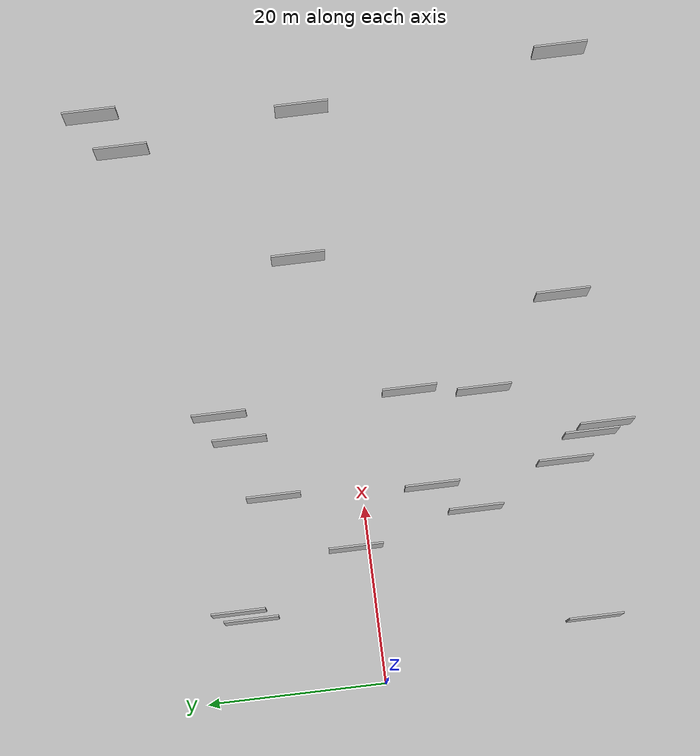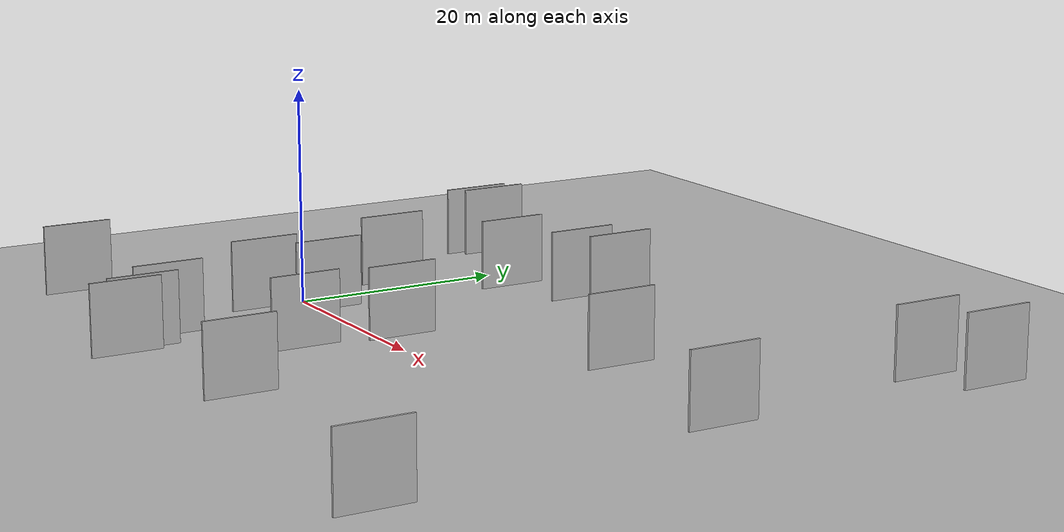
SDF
<?xml version="1.0" encoding="utf-8"?>

<sdf version="1.6">

   <world name="default">

      <gui fullscreen="0">

         <camera name="user_camera">

            <pose>-15 0 4.57585 0 0 0</pose>

            <view_controller>orbit</view_controller>

         </camera>

      </gui>

      <scene>

         <sky>

           <clouds>

             <speed>12</speed>

           </clouds>

         </sky>

         <ambient>0.4 0.4 0.4 1</ambient>

         <background>0.7 0.7 0.7 1</background>

         <shadows>1</shadows>

      </scene>

      <gravity>0 0 -9.8066</gravity>

      <magnetic_field>6e-06 2.3e-05 -4.2e-05</magnetic_field>

      <physics default="0" name="default_physics" type="ode">

         <ode>

            <solver>

               <type>quick</type>

               <iters>10</iters>

               <sor>1.0</sor>

               <use_dynamic_moi_rescaling>0</use_dynamic_moi_rescaling>

            </solver>

            <constraints>

               <cfm>0</cfm>

               <erp>0.2</erp>

               <contact_max_correcting_vel>100</contact_max_correcting_vel>

               <contact_surface_layer>0.001</contact_surface_layer>

            </constraints>

         </ode>

         <max_step_size>0.004</max_step_size>

         <real_time_factor>1</real_time_factor>

         <real_time_update_rate>250</real_time_update_rate>

      </physics>

      <light name="sun" type="directional">

         <cast_shadows>1</cast_shadows>

         <pose>0 0 10 0 0 0</pose>

         <diffuse>0.8 0.8 0.8 1</diffuse>

         <specular>0.2 0.2 0.2 1</specular>

         <attenuation>

            <range>1000</range>

            <constant>0.9</constant>

            <linear>0.01</linear>

            <quadratic>0.001</quadratic>

         </attenuation>

         <direction>-0.5 0.1 -0.9</direction>

      </light>

      <include>

         <name>ground_plane_1</name>

         <uri>model://HANNAS_ground_plane</uri>

         <pose>0 0 0  0 0 0</pose>

      </include>

      <include>

         <name>ground_plane_2</name>

         <uri>model://HANNAS_ground_plane</uri>

         <pose>100 0 0  0 0 0</pose>

      </include>

      <model name="HANNAS_wall_1">

         <static>1</static>

         <pose frame="">20.7412 -7.5342 5.0 0.000000 0.000000 1.570796</pose>

         <link name="link">

            <pose frame="">0 0 3.00 0 0 0</pose>

            <collision name="collision">

               <geometry>

                  <box>

                     <size>6.00 0.2 6.00</size>

                  </box>

               </geometry>

               <max_contacts>10</max_contacts>

               <surface>

                  <contact>

                     <ode/>

                  </contact>

                  <bounce/>

                  <friction>

                     <torsional>

                        <ode/>

                     </torsional>

                     <ode/>

                  </friction>

               </surface>

            </collision>

            <visual name="visual">

               <cast_shadows>0</cast_shadows>

               <geometry>

                  <box>

                     <size>6.00 0.2 6.00</size>

                  </box>

               </geometry>

               <material>

                  <script>

                     <uri>model://HANNAS_wall/materials/scripts</uri>

                     <uri>model://HANNAS_wall/materials/textures</uri>

                     <name>vrc/HANNAS_wall</name>

                  </script>

               </material>

            </visual>

            <self_collide>0</self_collide>

            <enable_wind>0</enable_wind>

            <kinematic>0</kinematic>

         </link>

      </model>

      <model name="HANNAS_wall_2">

         <static>1</static>

         <pose frame="">67.8018 -27.8107 5.0 0.000000 0.000000 1.570796</pose>

         <link name="link">

            <pose frame="">0 0 3.00 0 0 0</pose>

            <collision name="collision">

               <geometry>

                  <box>

                     <size>6.00 0.2 6.00</size>

                  </box>

               </geometry>

               <max_contacts>10</max_contacts>

               <surface>

                  <contact>

                     <ode/>

                  </contact>

                  <bounce/>

                  <friction>

                     <torsional>

                        <ode/>

                     </torsional>

                     <ode/>

                  </friction>

               </surface>

            </collision>

            <visual name="visual">

               <cast_shadows>0</cast_shadows>

               <geometry>

                  <box>

                     <size>6.00 0.2 6.00</size>

                  </box>

               </geometry>

               <material>

                  <script>

                     <uri>model://HANNAS_wall/materials/scripts</uri>

                     <uri>model://HANNAS_wall/materials/textures</uri>

                     <name>vrc/HANNAS_wall</name>

                  </script>

               </material>

            </visual>

            <self_collide>0</self_collide>

            <enable_wind>0</enable_wind>

            <kinematic>0</kinematic>

         </link>

      </model>

      <model name="HANNAS_wall_3">

         <static>1</static>

         <pose frame="">31.2338 14.8441 5.0 0.000000 0.000000 1.570796</pose>

         <link name="link">

            <pose frame="">0 0 3.00 0 0 0</pose>

            <collision name="collision">

               <geometry>

                  <box>

                     <size>6.00 0.2 6.00</size>

                  </box>

               </geometry>

               <max_contacts>10</max_contacts>

               <surface>

                  <contact>

                     <ode/>

                  </contact>

                  <bounce/>

                  <friction>

                     <torsional>

                        <ode/>

                     </torsional>

                     <ode/>

                  </friction>

               </surface>

            </collision>

            <visual name="visual">

               <cast_shadows>0</cast_shadows>

               <geometry>

                  <box>

                     <size>6.00 0.2 6.00</size>

                  </box>

               </geometry>

               <material>

                  <script>

                     <uri>model://HANNAS_wall/materials/scripts</uri>

                     <uri>model://HANNAS_wall/materials/textures</uri>

                     <name>vrc/HANNAS_wall</name>

                  </script>

               </material>

            </visual>

            <self_collide>0</self_collide>

            <enable_wind>0</enable_wind>

            <kinematic>0</kinematic>

         </link>

      </model>

      <model name="HANNAS_wall_4">

         <static>1</static>

         <pose frame="">25.2690 -27.4634 5.0 0.000000 0.000000 1.570796</pose>

         <link name="link">

            <pose frame="">0 0 3.00 0 0 0</pose>

            <collision name="collision">

               <geometry>

                  <box>

                     <size>6.00 0.2 6.00</size>

                  </box>

               </geometry>

               <max_contacts>10</max_contacts>

               <surface>

                  <contact>

                     <ode/>

                  </contact>

                  <bounce/>

                  <friction>

                     <torsional>

                        <ode/>

                     </torsional>

                     <ode/>

                  </friction>

               </surface>

            </collision>

            <visual name="visual">

               <cast_shadows>0</cast_shadows>

               <geometry>

                  <box>

                     <size>6.00 0.2 6.00</size>

                  </box>

               </geometry>

               <material>

                  <script>

                     <uri>model://HANNAS_wall/materials/scripts</uri>

                     <uri>model://HANNAS_wall/materials/textures</uri>

                     <name>vrc/HANNAS_wall</name>

                  </script>

               </material>

            </visual>

            <self_collide>0</self_collide>

            <enable_wind>0</enable_wind>

            <kinematic>0</kinematic>

         </link>

      </model>

      <model name="HANNAS_wall_5">

         <static>1</static>

         <pose frame="">62.1963 22.2573 5.0 0.000000 0.000000 1.570796</pose>

         <link name="link">

            <pose frame="">0 0 3.00 0 0 0</pose>

            <collision name="collision">

               <geometry>

                  <box>

                     <size>6.00 0.2 6.00</size>

                  </box>

               </geometry>

               <max_contacts>10</max_contacts>

               <surface>

                  <contact>

                     <ode/>

                  </contact>

                  <bounce/>

                  <friction>

                     <torsional>

                        <ode/>

                     </torsional>

                     <ode/>

                  </friction>

               </surface>

            </collision>

            <visual name="visual">

               <cast_shadows>0</cast_shadows>

               <geometry>

                  <box>

                     <size>6.00 0.2 6.00</size>

                  </box>

               </geometry>

               <material>

                  <script>

                     <uri>model://HANNAS_wall/materials/scripts</uri>

                     <uri>model://HANNAS_wall/materials/textures</uri>

                     <name>vrc/HANNAS_wall</name>

                  </script>

               </material>

            </visual>

            <self_collide>0</self_collide>

            <enable_wind>0</enable_wind>

            <kinematic>0</kinematic>

         </link>

      </model>

      <model name="HANNAS_wall_6">

         <static>1</static>

         <pose frame="">8.4049 13.8768 5.0 0.000000 0.000000 1.570796</pose>

         <link name="link">

            <pose frame="">0 0 3.00 0 0 0</pose>

            <collision name="collision">

               <geometry>

                  <box>

                     <size>6.00 0.2 6.00</size>

                  </box>

               </geometry>

               <max_contacts>10</max_contacts>

               <surface>

                  <contact>

                     <ode/>

                  </contact>

                  <bounce/>

                  <friction>

                     <torsional>

                        <ode/>

                     </torsional>

                     <ode/>

                  </friction>

               </surface>

            </collision>

            <visual name="visual">

               <cast_shadows>0</cast_shadows>

               <geometry>

                  <box>

                     <size>6.00 0.2 6.00</size>

                  </box>

               </geometry>

               <material>

                  <script>

                     <uri>model://HANNAS_wall/materials/scripts</uri>

                     <uri>model://HANNAS_wall/materials/textures</uri>

                     <name>vrc/HANNAS_wall</name>

                  </script>

               </material>

            </visual>

            <self_collide>0</self_collide>

            <enable_wind>0</enable_wind>

            <kinematic>0</kinematic>

         </link>

      </model>

      <model name="HANNAS_wall_7">

         <static>1</static>

         <pose frame="">4.2225 -23.4742 5.0 0.000000 0.000000 1.570796</pose>

         <link name="link">

            <pose frame="">0 0 3.00 0 0 0</pose>

            <collision name="collision">

               <geometry>

                  <box>

                     <size>6.00 0.2 6.00</size>

                  </box>

               </geometry>

               <max_contacts>10</max_contacts>

               <surface>

                  <contact>

                     <ode/>

                  </contact>

                  <bounce/>

                  <friction>

                     <torsional>

                        <ode/>

                     </torsional>

                     <ode/>

                  </friction>

               </surface>

            </collision>

            <visual name="visual">

               <cast_shadows>0</cast_shadows>

               <geometry>

                  <box>

                     <size>6.00 0.2 6.00</size>

                  </box>

               </geometry>

               <material>

                  <script>

                     <uri>model://HANNAS_wall/materials/scripts</uri>

                     <uri>model://HANNAS_wall/materials/textures</uri>

                     <name>vrc/HANNAS_wall</name>

                  </script>

               </material>

            </visual>

            <self_collide>0</self_collide>

            <enable_wind>0</enable_wind>

            <kinematic>0</kinematic>

         </link>

      </model>

      <model name="HANNAS_wall_8">

         <static>1</static>

         <pose frame="">21.5722 9.9279 5.0 0.000000 0.000000 1.570796</pose>

         <link name="link">

            <pose frame="">0 0 3.00 0 0 0</pose>

            <collision name="collision">

               <geometry>

                  <box>

                     <size>6.00 0.2 6.00</size>

                  </box>

               </geometry>

               <max_contacts>10</max_contacts>

               <surface>

                  <contact>

                     <ode/>

                  </contact>

                  <bounce/>

                  <friction>

                     <torsional>

                        <ode/>

                     </torsional>

                     <ode/>

                  </friction>

               </surface>

            </collision>

            <visual name="visual">

               <cast_shadows>0</cast_shadows>

               <geometry>

                  <box>

                     <size>6.00 0.2 6.00</size>

                  </box>

               </geometry>

               <material>

                  <script>

                     <uri>model://HANNAS_wall/materials/scripts</uri>

                     <uri>model://HANNAS_wall/materials/textures</uri>

                     <name>vrc/HANNAS_wall</name>

                  </script>

               </material>

            </visual>

            <self_collide>0</self_collide>

            <enable_wind>0</enable_wind>

            <kinematic>0</kinematic>

         </link>

      </model>

      <model name="HANNAS_wall_9">

         <static>1</static>

         <pose frame="">24.4387 -25.6779 5.0 0.000000 0.000000 1.570796</pose>

         <link name="link">

            <pose frame="">0 0 3.00 0 0 0</pose>

            <collision name="collision">

               <geometry>

                  <box>

                     <size>6.00 0.2 6.00</size>

                  </box>

               </geometry>

               <max_contacts>10</max_contacts>

               <surface>

                  <contact>

                     <ode/>

                  </contact>

                  <bounce/>

                  <friction>

                     <torsional>

                        <ode/>

                     </torsional>

                     <ode/>

                  </friction>

               </surface>

            </collision>

            <visual name="visual">

               <cast_shadows>0</cast_shadows>

               <geometry>

                  <box>

                     <size>6.00 0.2 6.00</size>

                  </box>

               </geometry>

               <material>

                  <script>

                     <uri>model://HANNAS_wall/materials/scripts</uri>

                     <uri>model://HANNAS_wall/materials/textures</uri>

                     <name>vrc/HANNAS_wall</name>

                  </script>

               </material>

            </visual>

            <self_collide>0</self_collide>

            <enable_wind>0</enable_wind>

            <kinematic>0</kinematic>

         </link>

      </model>

      <model name="HANNAS_wall_10">

         <static>1</static>

         <pose frame="">47.7856 4.0914 5.0 0.000000 0.000000 1.570796</pose>

         <link name="link">

            <pose frame="">0 0 3.00 0 0 0</pose>

            <collision name="collision">

               <geometry>

                  <box>

                     <size>6.00 0.2 6.00</size>

                  </box>

               </geometry>

               <max_contacts>10</max_contacts>

               <surface>

                  <contact>

                     <ode/>

                  </contact>

                  <bounce/>

                  <friction>

                     <torsional>

                        <ode/>

                     </torsional>

                     <ode/>

                  </friction>

               </surface>

            </collision>

            <visual name="visual">

               <cast_shadows>0</cast_shadows>

               <geometry>

                  <box>

                     <size>6.00 0.2 6.00</size>

                  </box>

               </geometry>

               <material>

                  <script>

                     <uri>model://HANNAS_wall/materials/scripts</uri>

                     <uri>model://HANNAS_wall/materials/textures</uri>

                     <name>vrc/HANNAS_wall</name>

                  </script>

               </material>

            </visual>

            <self_collide>0</self_collide>

            <enable_wind>0</enable_wind>

            <kinematic>0</kinematic>

         </link>

      </model>

      <model name="HANNAS_wall_11">

         <static>1</static>

         <pose frame="">14.9479 1.5950 5.0 0.000000 0.000000 1.570796</pose>

         <link name="link">

            <pose frame="">0 0 3.00 0 0 0</pose>

            <collision name="collision">

               <geometry>

                  <box>

                     <size>6.00 0.2 6.00</size>

                  </box>

               </geometry>

               <max_contacts>10</max_contacts>

               <surface>

                  <contact>

                     <ode/>

                  </contact>

                  <bounce/>

                  <friction>

                     <torsional>

                        <ode/>

                     </torsional>

                     <ode/>

                  </friction>

               </surface>

            </collision>

            <visual name="visual">

               <cast_shadows>0</cast_shadows>

               <geometry>

                  <box>

                     <size>6.00 0.2 6.00</size>

                  </box>

               </geometry>

               <material>

                  <script>

                     <uri>model://HANNAS_wall/materials/scripts</uri>

                     <uri>model://HANNAS_wall/materials/textures</uri>

                     <name>vrc/HANNAS_wall</name>

                  </script>

               </material>

            </visual>

            <self_collide>0</self_collide>

            <enable_wind>0</enable_wind>

            <kinematic>0</kinematic>

         </link>

      </model>

      <model name="HANNAS_wall_12">

         <static>1</static>

         <pose frame="">66.6209 25.2771 5.0 0.000000 0.000000 1.570796</pose>

         <link name="link">

            <pose frame="">0 0 3.00 0 0 0</pose>

            <collision name="collision">

               <geometry>

                  <box>

                     <size>6.00 0.2 6.00</size>

                  </box>

               </geometry>

               <max_contacts>10</max_contacts>

               <surface>

                  <contact>

                     <ode/>

                  </contact>

                  <bounce/>

                  <friction>

                     <torsional>

                        <ode/>

                     </torsional>

                     <ode/>

                  </friction>

               </surface>

            </collision>

            <visual name="visual">

               <cast_shadows>0</cast_shadows>

               <geometry>

                  <box>

                     <size>6.00 0.2 6.00</size>

                  </box>

               </geometry>

               <material>

                  <script>

                     <uri>model://HANNAS_wall/materials/scripts</uri>

                     <uri>model://HANNAS_wall/materials/textures</uri>

                     <name>vrc/HANNAS_wall</name>

                  </script>

               </material>

            </visual>

            <self_collide>0</self_collide>

            <enable_wind>0</enable_wind>

            <kinematic>0</kinematic>

         </link>

      </model>

      <model name="HANNAS_wall_13">

         <static>1</static>

         <pose frame="">9.3715 15.1877 5.0 0.000000 0.000000 1.570796</pose>

         <link name="link">

            <pose frame="">0 0 3.00 0 0 0</pose>

            <collision name="collision">

               <geometry>

                  <box>

                     <size>6.00 0.2 6.00</size>

                  </box>

               </geometry>

               <max_contacts>10</max_contacts>

               <surface>

                  <contact>

                     <ode/>

                  </contact>

                  <bounce/>

                  <friction>

                     <torsional>

                        <ode/>

                     </torsional>

                     <ode/>

                  </friction>

               </surface>

            </collision>

            <visual name="visual">

               <cast_shadows>0</cast_shadows>

               <geometry>

                  <box>

                     <size>6.00 0.2 6.00</size>

                  </box>

               </geometry>

               <material>

                  <script>

                     <uri>model://HANNAS_wall/materials/scripts</uri>

                     <uri>model://HANNAS_wall/materials/textures</uri>

                     <name>vrc/HANNAS_wall</name>

                  </script>

               </material>

            </visual>

            <self_collide>0</self_collide>

            <enable_wind>0</enable_wind>

            <kinematic>0</kinematic>

         </link>

      </model>

      <model name="HANNAS_wall_14">

         <static>1</static>

         <pose frame="">31.5841 -6.3510 5.0 0.000000 0.000000 1.570796</pose>

         <link name="link">

            <pose frame="">0 0 3.00 0 0 0</pose>

            <collision name="collision">

               <geometry>

                  <box>

                     <size>6.00 0.2 6.00</size>

                  </box>

               </geometry>

               <max_contacts>10</max_contacts>

               <surface>

                  <contact>

                     <ode/>

                  </contact>

                  <bounce/>

                  <friction>

                     <torsional>

                        <ode/>

                     </torsional>

                     <ode/>

                  </friction>

               </surface>

            </collision>

            <visual name="visual">

               <cast_shadows>0</cast_shadows>

               <geometry>

                  <box>

                     <size>6.00 0.2 6.00</size>

                  </box>

               </geometry>

               <material>

                  <script>

                     <uri>model://HANNAS_wall/materials/scripts</uri>

                     <uri>model://HANNAS_wall/materials/textures</uri>

                     <name>vrc/HANNAS_wall</name>

                  </script>

               </material>

            </visual>

            <self_collide>0</self_collide>

            <enable_wind>0</enable_wind>

            <kinematic>0</kinematic>

         </link>

      </model>

      <model name="HANNAS_wall_15">

         <static>1</static>

         <pose frame="">64.5858 1.7170 5.0 0.000000 0.000000 1.570796</pose>

         <link name="link">

            <pose frame="">0 0 3.00 0 0 0</pose>

            <collision name="collision">

               <geometry>

                  <box>

                     <size>6.00 0.2 6.00</size>

                  </box>

               </geometry>

               <max_contacts>10</max_contacts>

               <surface>

                  <contact>

                     <ode/>

                  </contact>

                  <bounce/>

                  <friction>

                     <torsional>

                        <ode/>

                     </torsional>

                     <ode/>

                  </friction>

               </surface>

            </collision>

            <visual name="visual">

               <cast_shadows>0</cast_shadows>

               <geometry>

                  <box>

                     <size>6.00 0.2 6.00</size>

                  </box>

               </geometry>

               <material>

                  <script>

                     <uri>model://HANNAS_wall/materials/scripts</uri>

                     <uri>model://HANNAS_wall/materials/textures</uri>

                     <name>vrc/HANNAS_wall</name>

                  </script>

               </material>

            </visual>

            <self_collide>0</self_collide>

            <enable_wind>0</enable_wind>

            <kinematic>0</kinematic>

         </link>

      </model>

      <model name="HANNAS_wall_16">

         <static>1</static>

         <pose frame="">17.6434 -11.9998 5.0 0.000000 0.000000 1.570796</pose>

         <link name="link">

            <pose frame="">0 0 3.00 0 0 0</pose>

            <collision name="collision">

               <geometry>

                  <box>

                     <size>6.00 0.2 6.00</size>

                  </box>

               </geometry>

               <max_contacts>10</max_contacts>

               <surface>

                  <contact>

                     <ode/>

                  </contact>

                  <bounce/>

                  <friction>

                     <torsional>

                        <ode/>

                     </torsional>

                     <ode/>

                  </friction>

               </surface>

            </collision>

            <visual name="visual">

               <cast_shadows>0</cast_shadows>

               <geometry>

                  <box>

                     <size>6.00 0.2 6.00</size>

                  </box>

               </geometry>

               <material>

                  <script>

                     <uri>model://HANNAS_wall/materials/scripts</uri>

                     <uri>model://HANNAS_wall/materials/textures</uri>

                     <name>vrc/HANNAS_wall</name>

                  </script>

               </material>

            </visual>

            <self_collide>0</self_collide>

            <enable_wind>0</enable_wind>

            <kinematic>0</kinematic>

         </link>

      </model>

      <model name="HANNAS_wall_17">

         <static>1</static>

         <pose frame="">21.7549 -22.4169 5.0 0.000000 0.000000 1.570796</pose>

         <link name="link">

            <pose frame="">0 0 3.00 0 0 0</pose>

            <collision name="collision">

               <geometry>

                  <box>

                     <size>6.00 0.2 6.00</size>

                  </box>

               </geometry>

               <max_contacts>10</max_contacts>

               <surface>

                  <contact>

                     <ode/>

                  </contact>

                  <bounce/>

                  <friction>

                     <torsional>

                        <ode/>

                     </torsional>

                     <ode/>

                  </friction>

               </surface>

            </collision>

            <visual name="visual">

               <cast_shadows>0</cast_shadows>

               <geometry>

                  <box>

                     <size>6.00 0.2 6.00</size>

                  </box>

               </geometry>

               <material>

                  <script>

                     <uri>model://HANNAS_wall/materials/scripts</uri>

                     <uri>model://HANNAS_wall/materials/textures</uri>

                     <name>vrc/HANNAS_wall</name>

                  </script>

               </material>

            </visual>

            <self_collide>0</self_collide>

            <enable_wind>0</enable_wind>

            <kinematic>0</kinematic>

         </link>

      </model>

      <model name="HANNAS_wall_18">

         <static>1</static>

         <pose frame="">28.2347 12.9131 5.0 0.000000 0.000000 1.570796</pose>

         <link name="link">

            <pose frame="">0 0 3.00 0 0 0</pose>

            <collision name="collision">

               <geometry>

                  <box>

                     <size>6.00 0.2 6.00</size>

                  </box>

               </geometry>

               <max_contacts>10</max_contacts>

               <surface>

                  <contact>

                     <ode/>

                  </contact>

                  <bounce/>

                  <friction>

                     <torsional>

                        <ode/>

                     </torsional>

                     <ode/>

                  </friction>

               </surface>

            </collision>

            <visual name="visual">

               <cast_shadows>0</cast_shadows>

               <geometry>

                  <box>

                     <size>6.00 0.2 6.00</size>

                  </box>

               </geometry>

               <material>

                  <script>

                     <uri>model://HANNAS_wall/materials/scripts</uri>

                     <uri>model://HANNAS_wall/materials/textures</uri>

                     <name>vrc/HANNAS_wall</name>

                  </script>

               </material>

            </visual>

            <self_collide>0</self_collide>

            <enable_wind>0</enable_wind>

            <kinematic>0</kinematic>

         </link>

      </model>

      <model name="HANNAS_wall_19">

         <static>1</static>

         <pose frame="">30.6875 -14.5331 5.0 0.000000 0.000000 1.570796</pose>

         <link name="link">

            <pose frame="">0 0 3.00 0 0 0</pose>

            <collision name="collision">

               <geometry>

                  <box>

                     <size>6.00 0.2 6.00</size>

                  </box>

               </geometry>

               <max_contacts>10</max_contacts>

               <surface>

                  <contact>

                     <ode/>

                  </contact>

                  <bounce/>

                  <friction>

                     <torsional>

                        <ode/>

                     </torsional>

                     <ode/>

                  </friction>

               </surface>

            </collision>

            <visual name="visual">

               <cast_shadows>0</cast_shadows>

               <geometry>

                  <box>

                     <size>6.00 0.2 6.00</size>

                  </box>

               </geometry>

               <material>

                  <script>

                     <uri>model://HANNAS_wall/materials/scripts</uri>

                     <uri>model://HANNAS_wall/materials/textures</uri>

                     <name>vrc/HANNAS_wall</name>

                  </script>

               </material>

            </visual>

            <self_collide>0</self_collide>

            <enable_wind>0</enable_wind>

            <kinematic>0</kinematic>

         </link>

      </model>

      <model name="HANNAS_wall_20">

         <static>1</static>

         <pose frame="">40.2162 -24.5225 5.0 0.000000 0.000000 1.570796</pose>

         <link name="link">

            <pose frame="">0 0 3.00 0 0 0</pose>

            <collision name="collision">

               <geometry>

                  <box>

                     <size>6.00 0.2 6.00</size>

                  </box>

               </geometry>

               <max_contacts>10</max_contacts>

               <surface>

                  <contact>

                     <ode/>

                  </contact>

                  <bounce/>

                  <friction>

                     <torsional>

                        <ode/>

                     </torsional>

                     <ode/>

                  </friction>

               </surface>

            </collision>

            <visual name="visual">

               <cast_shadows>0</cast_shadows>

               <geometry>

                  <box>

                     <size>6.00 0.2 6.00</size>

                  </box>

               </geometry>

               <material>

                  <script>

                     <uri>model://HANNAS_wall/materials/scripts</uri>

                     <uri>model://HANNAS_wall/materials/textures</uri>

                     <name>vrc/HANNAS_wall</name>

                  </script>

               </material>

            </visual>

            <self_collide>0</self_collide>

            <enable_wind>0</enable_wind>

            <kinematic>0</kinematic>

         </link>

      </model>

   </world>

</sdf>

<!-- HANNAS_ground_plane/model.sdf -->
<sdf version="1.4">
<model name="HANNAS_ground_plane">
  <static>true</static>
    <link name="link">
      <collision name="collision">
        <geometry>
          <plane>
            <normal>0 0 1</normal>
            <size>1000 1000</size>
          </plane>
        </geometry>
        <surface>
          <friction>
            <ode>
              <mu>100</mu>
              <mu2>50</mu2>
            </ode>
          </friction>
        </surface>
      </collision>
      <visual name="visual">
        <cast_shadows>false</cast_shadows>
        <geometry>
          <plane>
            <normal>0 0 1</normal>
            <size>1000 1000</size>
          </plane>
        </geometry>
        <material>
          <script>
            <uri>model://HANNAS_ground_plane/materials/scripts/HANNAS_ground_plane.material</uri>
	    <uri>model://HANNAS_ground_plane/materials/textures</uri>
            <name>HANNASGroundPlane/Image</name>
          </script>
        </material>
      </visual>
    </link>
  </model>
</sdf>
